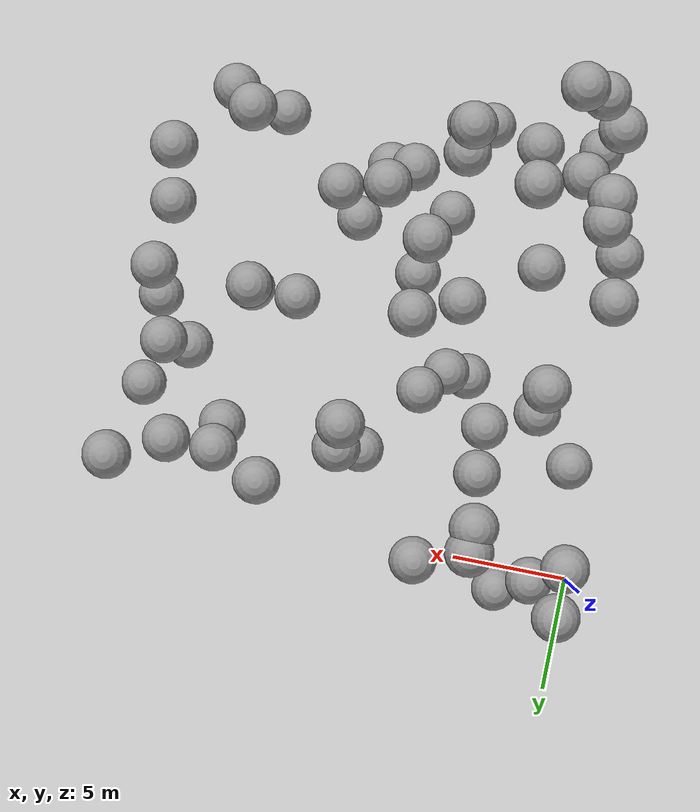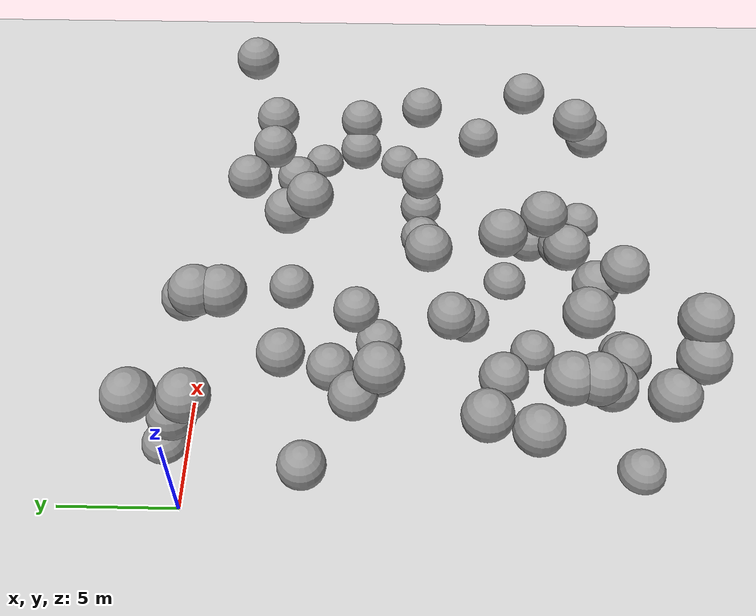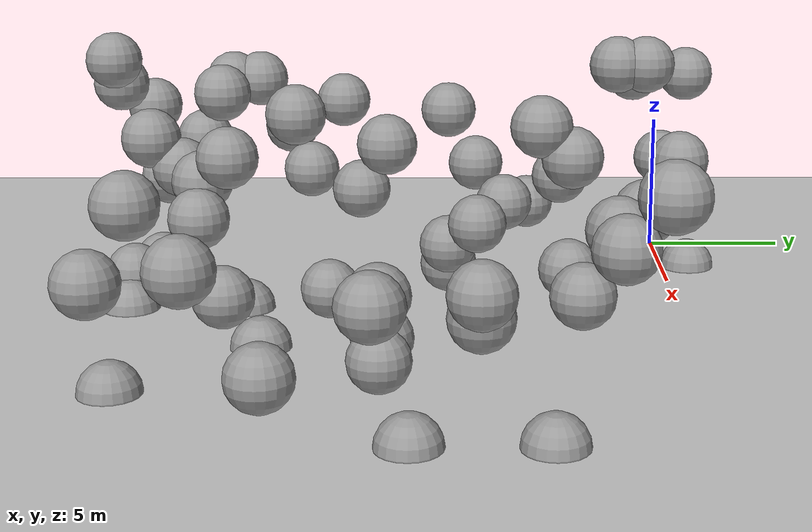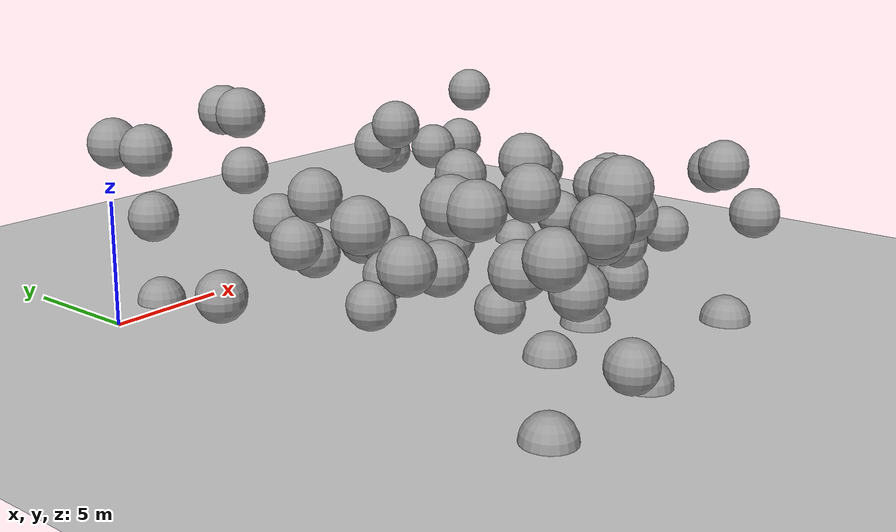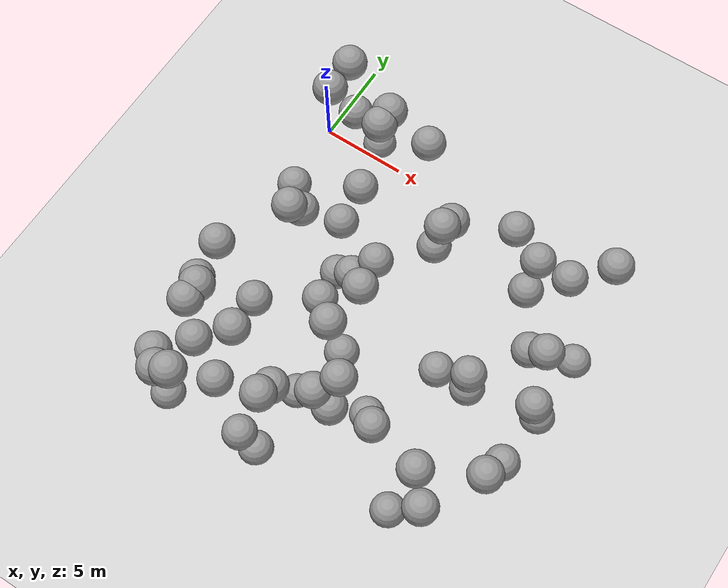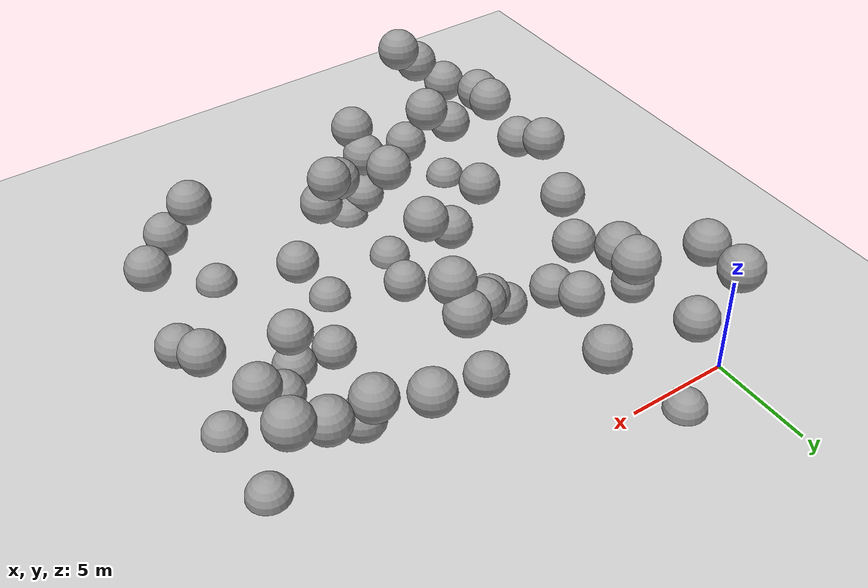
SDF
<sdf version="1.7">
 <world name="default">
  <model name="ground_plane">
   <static>1</static>
   <link name="link">
    <collision name="collision">
     <geometry><plane><normal>0 0 1</normal><size>100 100</size></plane></geometry>
     <surface>
      <contact><collide_bitmask>65535</collide_bitmask></contact>
      <friction><ode><mu>100</mu><mu2>50</mu2></ode></friction>
     </surface>
    </collision>
    <visual name="visual">
     <cast_shadows>0</cast_shadows>
     <geometry><plane><normal>0 0 1</normal><size>100 100</size></plane></geometry>
     <material>
      <script><uri>file://media/materials/scripts/gazebo.material</uri><name>Gazebo/Grey</name></script>
     </material>
    </visual>
   </link>
  </model>
  <model name="sphere_0">
   <static>1</static>
   <pose>7 -8 2 0 0 0</pose>
   <link name="link">
    <inertial>
     <mass>418.87902047863906</mass>
     <inertia>
      <ixx>167.55160819145564</ixx>
      <iyy>167.55160819145564</iyy>
      <izz>167.55160819145564</izz>
      <ixy>0</ixy>
      <ixz>0</ixz>
      <iyz>0</iyz>
     </inertia>
    </inertial>
    <collision name="collision"><geometry><sphere><radius>1.0</radius></sphere></geometry></collision>
    <visual name="visual">
     <geometry><sphere><radius>1.0</radius></sphere></geometry>
     <material>
      <script><uri>file://media/materials/scripts/gazebo.material</uri><name>Gazebo/Grey</name></script>
     </material>
    </visual>
   </link>
  </model>
  <model name="sphere_10">
   <static>1</static>
   <pose>2 0 4 0 0 0</pose>
   <link name="link">
    <inertial>
     <mass>418.87902047863906</mass>
     <inertia>
      <ixx>167.55160819145564</ixx>
      <iyy>167.55160819145564</iyy>
      <izz>167.55160819145564</izz>
      <ixy>0</ixy>
      <ixz>0</ixz>
      <iyz>0</iyz>
     </inertia>
    </inertial>
    <collision name="collision"><geometry><sphere><radius>1.0</radius></sphere></geometry></collision>
    <visual name="visual">
     <geometry><sphere><radius>1.0</radius></sphere></geometry>
     <material>
      <script><uri>file://media/materials/scripts/gazebo.material</uri><name>Gazebo/Grey</name></script>
     </material>
    </visual>
   </link>
  </model>
  <model name="sphere_15">
   <static>1</static>
   <pose>20 -15 5 0 0 0</pose>
   <link name="link">
    <inertial>
     <mass>418.87902047863906</mass>
     <inertia>
      <ixx>167.55160819145564</ixx>
      <iyy>167.55160819145564</iyy>
      <izz>167.55160819145564</izz>
      <ixy>0</ixy>
      <ixz>0</ixz>
      <iyz>0</iyz>
     </inertia>
    </inertial>
    <collision name="collision"><geometry><sphere><radius>1.0</radius></sphere></geometry></collision>
    <visual name="visual">
     <geometry><sphere><radius>1.0</radius></sphere></geometry>
     <material>
      <script><uri>file://media/materials/scripts/gazebo.material</uri><name>Gazebo/Grey</name></script>
     </material>
    </visual>
   </link>
  </model>
  <model name="sphere_21">
   <static>1</static>
   <pose>1 -5 2 0 0 0</pose>
   <link name="link">
    <inertial>
     <mass>418.87902047863906</mass>
     <inertia>
      <ixx>167.55160819145564</ixx>
      <iyy>167.55160819145564</iyy>
      <izz>167.55160819145564</izz>
      <ixy>0</ixy>
      <ixz>0</ixz>
      <iyz>0</iyz>
     </inertia>
    </inertial>
    <collision name="collision"><geometry><sphere><radius>1.0</radius></sphere></geometry></collision>
    <visual name="visual">
     <geometry><sphere><radius>1.0</radius></sphere></geometry>
     <material>
      <script><uri>file://media/materials/scripts/gazebo.material</uri><name>Gazebo/Grey</name></script>
     </material>
    </visual>
   </link>
  </model>
  <model name="sphere_22">
   <static>1</static>
   <pose>2 -16 7 0 0 0</pose>
   <link name="link">
    <inertial>
     <mass>418.87902047863906</mass>
     <inertia>
      <ixx>167.55160819145564</ixx>
      <iyy>167.55160819145564</iyy>
      <izz>167.55160819145564</izz>
      <ixy>0</ixy>
      <ixz>0</ixz>
      <iyz>0</iyz>
     </inertia>
    </inertial>
    <collision name="collision"><geometry><sphere><radius>1.0</radius></sphere></geometry></collision>
    <visual name="visual">
     <geometry><sphere><radius>1.0</radius></sphere></geometry>
     <material>
      <script><uri>file://media/materials/scripts/gazebo.material</uri><name>Gazebo/Grey</name></script>
     </material>
    </visual>
   </link>
  </model>
  <model name="sphere_23">
   <static>1</static>
   <pose>1 1 7 0 0 0</pose>
   <link name="link">
    <inertial>
     <mass>418.87902047863906</mass>
     <inertia>
      <ixx>167.55160819145564</ixx>
      <iyy>167.55160819145564</iyy>
      <izz>167.55160819145564</izz>
      <ixy>0</ixy>
      <ixz>0</ixz>
      <iyz>0</iyz>
     </inertia>
    </inertial>
    <collision name="collision"><geometry><sphere><radius>1.0</radius></sphere></geometry></collision>
    <visual name="visual">
     <geometry><sphere><radius>1.0</radius></sphere></geometry>
     <material>
      <script><uri>file://media/materials/scripts/gazebo.material</uri><name>Gazebo/Grey</name></script>
     </material>
    </visual>
   </link>
  </model>
  <model name="sphere_32">
   <static>1</static>
   <pose>3 -8 6 0 0 0</pose>
   <link name="link">
    <inertial>
     <mass>418.87902047863906</mass>
     <inertia>
      <ixx>167.55160819145564</ixx>
      <iyy>167.55160819145564</iyy>
      <izz>167.55160819145564</izz>
      <ixy>0</ixy>
      <ixz>0</ixz>
      <iyz>0</iyz>
     </inertia>
    </inertial>
    <collision name="collision"><geometry><sphere><radius>1.0</radius></sphere></geometry></collision>
    <visual name="visual">
     <geometry><sphere><radius>1.0</radius></sphere></geometry>
     <material>
      <script><uri>file://media/materials/scripts/gazebo.material</uri><name>Gazebo/Grey</name></script>
     </material>
    </visual>
   </link>
  </model>
  <model name="sphere_33">
   <static>1</static>
   <pose>11 -5 7 0 0 0</pose>
   <link name="link">
    <inertial>
     <mass>418.87902047863906</mass>
     <inertia>
      <ixx>167.55160819145564</ixx>
      <iyy>167.55160819145564</iyy>
      <izz>167.55160819145564</izz>
      <ixy>0</ixy>
      <ixz>0</ixz>
      <iyz>0</iyz>
     </inertia>
    </inertial>
    <collision name="collision"><geometry><sphere><radius>1.0</radius></sphere></geometry></collision>
    <visual name="visual">
     <geometry><sphere><radius>1.0</radius></sphere></geometry>
     <material>
      <script><uri>file://media/materials/scripts/gazebo.material</uri><name>Gazebo/Grey</name></script>
     </material>
    </visual>
   </link>
  </model>
  <model name="sphere_44">
   <static>1</static>
   <pose>10 -4 2 0 0 0</pose>
   <link name="link">
    <inertial>
     <mass>418.87902047863906</mass>
     <inertia>
      <ixx>167.55160819145564</ixx>
      <iyy>167.55160819145564</iyy>
      <izz>167.55160819145564</izz>
      <ixy>0</ixy>
      <ixz>0</ixz>
      <iyz>0</iyz>
     </inertia>
    </inertial>
    <collision name="collision"><geometry><sphere><radius>1.0</radius></sphere></geometry></collision>
    <visual name="visual">
     <geometry><sphere><radius>1.0</radius></sphere></geometry>
     <material>
      <script><uri>file://media/materials/scripts/gazebo.material</uri><name>Gazebo/Grey</name></script>
     </material>
    </visual>
   </link>
  </model>
  <model name="sphere_48">
   <static>1</static>
   <pose>3 1 0 0 0 0</pose>
   <link name="link">
    <inertial>
     <mass>418.87902047863906</mass>
     <inertia>
      <ixx>167.55160819145564</ixx>
      <iyy>167.55160819145564</iyy>
      <izz>167.55160819145564</izz>
      <ixy>0</ixy>
      <ixz>0</ixz>
      <iyz>0</iyz>
     </inertia>
    </inertial>
    <collision name="collision"><geometry><sphere><radius>1.0</radius></sphere></geometry></collision>
    <visual name="visual">
     <geometry><sphere><radius>1.0</radius></sphere></geometry>
     <material>
      <script><uri>file://media/materials/scripts/gazebo.material</uri><name>Gazebo/Grey</name></script>
     </material>
    </visual>
   </link>
  </model>
  <model name="sphere_51">
   <static>1</static>
   <pose>19 -7 4 0 0 0</pose>
   <link name="link">
    <inertial>
     <mass>418.87902047863906</mass>
     <inertia>
      <ixx>167.55160819145564</ixx>
      <iyy>167.55160819145564</iyy>
      <izz>167.55160819145564</izz>
      <ixy>0</ixy>
      <ixz>0</ixz>
      <iyz>0</iyz>
     </inertia>
    </inertial>
    <collision name="collision"><geometry><sphere><radius>1.0</radius></sphere></geometry></collision>
    <visual name="visual">
     <geometry><sphere><radius>1.0</radius></sphere></geometry>
     <material>
      <script><uri>file://media/materials/scripts/gazebo.material</uri><name>Gazebo/Grey</name></script>
     </material>
    </visual>
   </link>
  </model>
  <model name="sphere_53">
   <static>1</static>
   <pose>3 -20 7 0 0 0</pose>
   <link name="link">
    <inertial>
     <mass>418.87902047863906</mass>
     <inertia>
      <ixx>167.55160819145564</ixx>
      <iyy>167.55160819145564</iyy>
      <izz>167.55160819145564</izz>
      <ixy>0</ixy>
      <ixz>0</ixz>
      <iyz>0</iyz>
     </inertia>
    </inertial>
    <collision name="collision"><geometry><sphere><radius>1.0</radius></sphere></geometry></collision>
    <visual name="visual">
     <geometry><sphere><radius>1.0</radius></sphere></geometry>
     <material>
      <script><uri>file://media/materials/scripts/gazebo.material</uri><name>Gazebo/Grey</name></script>
     </material>
    </visual>
   </link>
  </model>
  <model name="sphere_54">
   <static>1</static>
   <pose>3 -17 5 0 0 0</pose>
   <link name="link">
    <inertial>
     <mass>418.87902047863906</mass>
     <inertia>
      <ixx>167.55160819145564</ixx>
      <iyy>167.55160819145564</iyy>
      <izz>167.55160819145564</izz>
      <ixy>0</ixy>
      <ixz>0</ixz>
      <iyz>0</iyz>
     </inertia>
    </inertial>
    <collision name="collision"><geometry><sphere><radius>1.0</radius></sphere></geometry></collision>
    <visual name="visual">
     <geometry><sphere><radius>1.0</radius></sphere></geometry>
     <material>
      <script><uri>file://media/materials/scripts/gazebo.material</uri><name>Gazebo/Grey</name></script>
     </material>
    </visual>
   </link>
  </model>
  <model name="sphere_55">
   <static>1</static>
   <pose>4 -13 4 0 0 0</pose>
   <link name="link">
    <inertial>
     <mass>418.87902047863906</mass>
     <inertia>
      <ixx>167.55160819145564</ixx>
      <iyy>167.55160819145564</iyy>
      <izz>167.55160819145564</izz>
      <ixy>0</ixy>
      <ixz>0</ixz>
      <iyz>0</iyz>
     </inertia>
    </inertial>
    <collision name="collision"><geometry><sphere><radius>1.0</radius></sphere></geometry></collision>
    <visual name="visual">
     <geometry><sphere><radius>1.0</radius></sphere></geometry>
     <material>
      <script><uri>file://media/materials/scripts/gazebo.material</uri><name>Gazebo/Grey</name></script>
     </material>
    </visual>
   </link>
  </model>
  <model name="sphere_62">
   <static>1</static>
   <pose>17 -17 6 0 0 0</pose>
   <link name="link">
    <inertial>
     <mass>418.87902047863906</mass>
     <inertia>
      <ixx>167.55160819145564</ixx>
      <iyy>167.55160819145564</iyy>
      <izz>167.55160819145564</izz>
      <ixy>0</ixy>
      <ixz>0</ixz>
      <iyz>0</iyz>
     </inertia>
    </inertial>
    <collision name="collision"><geometry><sphere><radius>1.0</radius></sphere></geometry></collision>
    <visual name="visual">
     <geometry><sphere><radius>1.0</radius></sphere></geometry>
     <material>
      <script><uri>file://media/materials/scripts/gazebo.material</uri><name>Gazebo/Grey</name></script>
     </material>
    </visual>
   </link>
  </model>
  <model name="sphere_63">
   <static>1</static>
   <pose>6 -8 1 0 0 0</pose>
   <link name="link">
    <inertial>
     <mass>418.87902047863906</mass>
     <inertia>
      <ixx>167.55160819145564</ixx>
      <iyy>167.55160819145564</iyy>
      <izz>167.55160819145564</izz>
      <ixy>0</ixy>
      <ixz>0</ixz>
      <iyz>0</iyz>
     </inertia>
    </inertial>
    <collision name="collision"><geometry><sphere><radius>1.0</radius></sphere></geometry></collision>
    <visual name="visual">
     <geometry><sphere><radius>1.0</radius></sphere></geometry>
     <material>
      <script><uri>file://media/materials/scripts/gazebo.material</uri><name>Gazebo/Grey</name></script>
     </material>
    </visual>
   </link>
  </model>
  <model name="sphere_66">
   <static>1</static>
   <pose>13 -15 2 0 0 0</pose>
   <link name="link">
    <inertial>
     <mass>418.87902047863906</mass>
     <inertia>
      <ixx>167.55160819145564</ixx>
      <iyy>167.55160819145564</iyy>
      <izz>167.55160819145564</izz>
      <ixy>0</ixy>
      <ixz>0</ixz>
      <iyz>0</iyz>
     </inertia>
    </inertial>
    <collision name="collision"><geometry><sphere><radius>1.0</radius></sphere></geometry></collision>
    <visual name="visual">
     <geometry><sphere><radius>1.0</radius></sphere></geometry>
     <material>
      <script><uri>file://media/materials/scripts/gazebo.material</uri><name>Gazebo/Grey</name></script>
     </material>
    </visual>
   </link>
  </model>
  <model name="sphere_67">
   <static>1</static>
   <pose>16 -3 5 0 0 0</pose>
   <link name="link">
    <inertial>
     <mass>418.87902047863906</mass>
     <inertia>
      <ixx>167.55160819145564</ixx>
      <iyy>167.55160819145564</iyy>
      <izz>167.55160819145564</izz>
      <ixy>0</ixy>
      <ixz>0</ixz>
      <iyz>0</iyz>
     </inertia>
    </inertial>
    <collision name="collision"><geometry><sphere><radius>1.0</radius></sphere></geometry></collision>
    <visual name="visual">
     <geometry><sphere><radius>1.0</radius></sphere></geometry>
     <material>
      <script><uri>file://media/materials/scripts/gazebo.material</uri><name>Gazebo/Grey</name></script>
     </material>
    </visual>
   </link>
  </model>
  <model name="sphere_72">
   <static>1</static>
   <pose>1 -14 5 0 0 0</pose>
   <link name="link">
    <inertial>
     <mass>418.87902047863906</mass>
     <inertia>
      <ixx>167.55160819145564</ixx>
      <iyy>167.55160819145564</iyy>
      <izz>167.55160819145564</izz>
      <ixy>0</ixy>
      <ixz>0</ixz>
      <iyz>0</iyz>
     </inertia>
    </inertial>
    <collision name="collision"><geometry><sphere><radius>1.0</radius></sphere></geometry></collision>
    <visual name="visual">
     <geometry><sphere><radius>1.0</radius></sphere></geometry>
     <material>
      <script><uri>file://media/materials/scripts/gazebo.material</uri><name>Gazebo/Grey</name></script>
     </material>
    </visual>
   </link>
  </model>
  <model name="sphere_81">
   <static>1</static>
   <pose>8 -18 6 0 0 0</pose>
   <link name="link">
    <inertial>
     <mass>418.87902047863906</mass>
     <inertia>
      <ixx>167.55160819145564</ixx>
      <iyy>167.55160819145564</iyy>
      <izz>167.55160819145564</izz>
      <ixy>0</ixy>
      <ixz>0</ixz>
      <iyz>0</iyz>
     </inertia>
    </inertial>
    <collision name="collision"><geometry><sphere><radius>1.0</radius></sphere></geometry></collision>
    <visual name="visual">
     <geometry><sphere><radius>1.0</radius></sphere></geometry>
     <material>
      <script><uri>file://media/materials/scripts/gazebo.material</uri><name>Gazebo/Grey</name></script>
     </material>
    </visual>
   </link>
  </model>
  <model name="sphere_83">
   <static>1</static>
   <pose>20 -2 7 0 0 0</pose>
   <link name="link">
    <inertial>
     <mass>418.87902047863906</mass>
     <inertia>
      <ixx>167.55160819145564</ixx>
      <iyy>167.55160819145564</iyy>
      <izz>167.55160819145564</izz>
      <ixy>0</ixy>
      <ixz>0</ixz>
      <iyz>0</iyz>
     </inertia>
    </inertial>
    <collision name="collision"><geometry><sphere><radius>1.0</radius></sphere></geometry></collision>
    <visual name="visual">
     <geometry><sphere><radius>1.0</radius></sphere></geometry>
     <material>
      <script><uri>file://media/materials/scripts/gazebo.material</uri><name>Gazebo/Grey</name></script>
     </material>
    </visual>
   </link>
  </model>
  <model name="sphere_96">
   <static>1</static>
   <pose>3 -7 4 0 0 0</pose>
   <link name="link">
    <inertial>
     <mass>418.87902047863906</mass>
     <inertia>
      <ixx>167.55160819145564</ixx>
      <iyy>167.55160819145564</iyy>
      <izz>167.55160819145564</izz>
      <ixy>0</ixy>
      <ixz>0</ixz>
      <iyz>0</iyz>
     </inertia>
    </inertial>
    <collision name="collision"><geometry><sphere><radius>1.0</radius></sphere></geometry></collision>
    <visual name="visual">
     <geometry><sphere><radius>1.0</radius></sphere></geometry>
     <material>
      <script><uri>file://media/materials/scripts/gazebo.material</uri><name>Gazebo/Grey</name></script>
     </material>
    </visual>
   </link>
  </model>
  <model name="sphere_97">
   <static>1</static>
   <pose>5 -1 8 0 0 0</pose>
   <link name="link">
    <inertial>
     <mass>418.87902047863906</mass>
     <inertia>
      <ixx>167.55160819145564</ixx>
      <iyy>167.55160819145564</iyy>
      <izz>167.55160819145564</izz>
      <ixy>0</ixy>
      <ixz>0</ixz>
      <iyz>0</iyz>
     </inertia>
    </inertial>
    <collision name="collision"><geometry><sphere><radius>1.0</radius></sphere></geometry></collision>
    <visual name="visual">
     <geometry><sphere><radius>1.0</radius></sphere></geometry>
     <material>
      <script><uri>file://media/materials/scripts/gazebo.material</uri><name>Gazebo/Grey</name></script>
     </material>
    </visual>
   </link>
  </model>
  <model name="sphere_98">
   <static>1</static>
   <pose>8 -7 3 0 0 0</pose>
   <link name="link">
    <inertial>
     <mass>418.87902047863906</mass>
     <inertia>
      <ixx>167.55160819145564</ixx>
      <iyy>167.55160819145564</iyy>
      <izz>167.55160819145564</izz>
      <ixy>0</ixy>
      <ixz>0</ixz>
      <iyz>0</iyz>
     </inertia>
    </inertial>
    <collision name="collision"><geometry><sphere><radius>1.0</radius></sphere></geometry></collision>
    <visual name="visual">
     <geometry><sphere><radius>1.0</radius></sphere></geometry>
     <material>
      <script><uri>file://media/materials/scripts/gazebo.material</uri><name>Gazebo/Grey</name></script>
     </material>
    </visual>
   </link>
  </model>
  <model name="sphere_99">
   <static>1</static>
   <pose>5 -2 8 0 0 0</pose>
   <link name="link">
    <inertial>
     <mass>418.87902047863906</mass>
     <inertia>
      <ixx>167.55160819145564</ixx>
      <iyy>167.55160819145564</iyy>
      <izz>167.55160819145564</izz>
      <ixy>0</ixy>
      <ixz>0</ixz>
      <iyz>0</iyz>
     </inertia>
    </inertial>
    <collision name="collision"><geometry><sphere><radius>1.0</radius></sphere></geometry></collision>
    <visual name="visual">
     <geometry><sphere><radius>1.0</radius></sphere></geometry>
     <material>
      <script><uri>file://media/materials/scripts/gazebo.material</uri><name>Gazebo/Grey</name></script>
     </material>
    </visual>
   </link>
  </model>
  <model name="sphere_103">
   <static>1</static>
   <pose>11 -15 6 0 0 0</pose>
   <link name="link">
    <inertial>
     <mass>418.87902047863906</mass>
     <inertia>
      <ixx>167.55160819145564</ixx>
      <iyy>167.55160819145564</iyy>
      <izz>167.55160819145564</izz>
      <ixy>0</ixy>
      <ixz>0</ixz>
      <iyz>0</iyz>
     </inertia>
    </inertial>
    <collision name="collision"><geometry><sphere><radius>1.0</radius></sphere></geometry></collision>
    <visual name="visual">
     <geometry><sphere><radius>1.0</radius></sphere></geometry>
     <material>
      <script><uri>file://media/materials/scripts/gazebo.material</uri><name>Gazebo/Grey</name></script>
     </material>
    </visual>
   </link>
  </model>
  <model name="sphere_113">
   <static>1</static>
   <pose>1 -14 5 0 0 0</pose>
   <link name="link">
    <inertial>
     <mass>418.87902047863906</mass>
     <inertia>
      <ixx>167.55160819145564</ixx>
      <iyy>167.55160819145564</iyy>
      <izz>167.55160819145564</izz>
      <ixy>0</ixy>
      <ixz>0</ixz>
      <iyz>0</iyz>
     </inertia>
    </inertial>
    <collision name="collision"><geometry><sphere><radius>1.0</radius></sphere></geometry></collision>
    <visual name="visual">
     <geometry><sphere><radius>1.0</radius></sphere></geometry>
     <material>
      <script><uri>file://media/materials/scripts/gazebo.material</uri><name>Gazebo/Grey</name></script>
     </material>
    </visual>
   </link>
  </model>
  <model name="sphere_121">
   <static>1</static>
   <pose>12 -14 0 0 0 0</pose>
   <link name="link">
    <inertial>
     <mass>418.87902047863906</mass>
     <inertia>
      <ixx>167.55160819145564</ixx>
      <iyy>167.55160819145564</iyy>
      <izz>167.55160819145564</izz>
      <ixy>0</ixy>
      <ixz>0</ixz>
      <iyz>0</iyz>
     </inertia>
    </inertial>
    <collision name="collision"><geometry><sphere><radius>1.0</radius></sphere></geometry></collision>
    <visual name="visual">
     <geometry><sphere><radius>1.0</radius></sphere></geometry>
     <material>
      <script><uri>file://media/materials/scripts/gazebo.material</uri><name>Gazebo/Grey</name></script>
     </material>
    </visual>
   </link>
  </model>
  <model name="sphere_125">
   <static>1</static>
   <pose>16 -10 3 0 0 0</pose>
   <link name="link">
    <inertial>
     <mass>418.87902047863906</mass>
     <inertia>
      <ixx>167.55160819145564</ixx>
      <iyy>167.55160819145564</iyy>
      <izz>167.55160819145564</izz>
      <ixy>0</ixy>
      <ixz>0</ixz>
      <iyz>0</iyz>
     </inertia>
    </inertial>
    <collision name="collision"><geometry><sphere><radius>1.0</radius></sphere></geometry></collision>
    <visual name="visual">
     <geometry><sphere><radius>1.0</radius></sphere></geometry>
     <material>
      <script><uri>file://media/materials/scripts/gazebo.material</uri><name>Gazebo/Grey</name></script>
     </material>
    </visual>
   </link>
  </model>
  <model name="sphere_127">
   <static>1</static>
   <pose>18 -7 3 0 0 0</pose>
   <link name="link">
    <inertial>
     <mass>418.87902047863906</mass>
     <inertia>
      <ixx>167.55160819145564</ixx>
      <iyy>167.55160819145564</iyy>
      <izz>167.55160819145564</izz>
      <ixy>0</ixy>
      <ixz>0</ixz>
      <iyz>0</iyz>
     </inertia>
    </inertial>
    <collision name="collision"><geometry><sphere><radius>1.0</radius></sphere></geometry></collision>
    <visual name="visual">
     <geometry><sphere><radius>1.0</radius></sphere></geometry>
     <material>
      <script><uri>file://media/materials/scripts/gazebo.material</uri><name>Gazebo/Grey</name></script>
     </material>
    </visual>
   </link>
  </model>
  <model name="sphere_129">
   <static>1</static>
   <pose>1 -12 6 0 0 0</pose>
   <link name="link">
    <inertial>
     <mass>418.87902047863906</mass>
     <inertia>
      <ixx>167.55160819145564</ixx>
      <iyy>167.55160819145564</iyy>
      <izz>167.55160819145564</izz>
      <ixy>0</ixy>
      <ixz>0</ixz>
      <iyz>0</iyz>
     </inertia>
    </inertial>
    <collision name="collision"><geometry><sphere><radius>1.0</radius></sphere></geometry></collision>
    <visual name="visual">
     <geometry><sphere><radius>1.0</radius></sphere></geometry>
     <material>
      <script><uri>file://media/materials/scripts/gazebo.material</uri><name>Gazebo/Grey</name></script>
     </material>
    </visual>
   </link>
  </model>
  <model name="sphere_131">
   <static>1</static>
   <pose>8 -17 5 0 0 0</pose>
   <link name="link">
    <inertial>
     <mass>418.87902047863906</mass>
     <inertia>
      <ixx>167.55160819145564</ixx>
      <iyy>167.55160819145564</iyy>
      <izz>167.55160819145564</izz>
      <ixy>0</ixy>
      <ixz>0</ixz>
      <iyz>0</iyz>
     </inertia>
    </inertial>
    <collision name="collision"><geometry><sphere><radius>1.0</radius></sphere></geometry></collision>
    <visual name="visual">
     <geometry><sphere><radius>1.0</radius></sphere></geometry>
     <material>
      <script><uri>file://media/materials/scripts/gazebo.material</uri><name>Gazebo/Grey</name></script>
     </material>
    </visual>
   </link>
  </model>
  <model name="sphere_140">
   <static>1</static>
   <pose>8 -19 0 0 0 0</pose>
   <link name="link">
    <inertial>
     <mass>418.87902047863906</mass>
     <inertia>
      <ixx>167.55160819145564</ixx>
      <iyy>167.55160819145564</iyy>
      <izz>167.55160819145564</izz>
      <ixy>0</ixy>
      <ixz>0</ixz>
      <iyz>0</iyz>
     </inertia>
    </inertial>
    <collision name="collision"><geometry><sphere><radius>1.0</radius></sphere></geometry></collision>
    <visual name="visual">
     <geometry><sphere><radius>1.0</radius></sphere></geometry>
     <material>
      <script><uri>file://media/materials/scripts/gazebo.material</uri><name>Gazebo/Grey</name></script>
     </material>
    </visual>
   </link>
  </model>
  <model name="sphere_144">
   <static>1</static>
   <pose>16 -4 3 0 0 0</pose>
   <link name="link">
    <inertial>
     <mass>418.87902047863906</mass>
     <inertia>
      <ixx>167.55160819145564</ixx>
      <iyy>167.55160819145564</iyy>
      <izz>167.55160819145564</izz>
      <ixy>0</ixy>
      <ixz>0</ixz>
      <iyz>0</iyz>
     </inertia>
    </inertial>
    <collision name="collision"><geometry><sphere><radius>1.0</radius></sphere></geometry></collision>
    <visual name="visual">
     <geometry><sphere><radius>1.0</radius></sphere></geometry>
     <material>
      <script><uri>file://media/materials/scripts/gazebo.material</uri><name>Gazebo/Grey</name></script>
     </material>
    </visual>
   </link>
  </model>
  <model name="sphere_146">
   <static>1</static>
   <pose>20 -9 0 0 0 0</pose>
   <link name="link">
    <inertial>
     <mass>418.87902047863906</mass>
     <inertia>
      <ixx>167.55160819145564</ixx>
      <iyy>167.55160819145564</iyy>
      <izz>167.55160819145564</izz>
      <ixy>0</ixy>
      <ixz>0</ixz>
      <iyz>0</iyz>
     </inertia>
    </inertial>
    <collision name="collision"><geometry><sphere><radius>1.0</radius></sphere></geometry></collision>
    <visual name="visual">
     <geometry><sphere><radius>1.0</radius></sphere></geometry>
     <material>
      <script><uri>file://media/materials/scripts/gazebo.material</uri><name>Gazebo/Grey</name></script>
     </material>
    </visual>
   </link>
  </model>
  <model name="sphere_152">
   <static>1</static>
   <pose>20 -5 0 0 0 0</pose>
   <link name="link">
    <inertial>
     <mass>418.87902047863906</mass>
     <inertia>
      <ixx>167.55160819145564</ixx>
      <iyy>167.55160819145564</iyy>
      <izz>167.55160819145564</izz>
      <ixy>0</ixy>
      <ixz>0</ixz>
      <iyz>0</iyz>
     </inertia>
    </inertial>
    <collision name="collision"><geometry><sphere><radius>1.0</radius></sphere></geometry></collision>
    <visual name="visual">
     <geometry><sphere><radius>1.0</radius></sphere></geometry>
     <material>
      <script><uri>file://media/materials/scripts/gazebo.material</uri><name>Gazebo/Grey</name></script>
     </material>
    </visual>
   </link>
  </model>
  <model name="sphere_158">
   <static>1</static>
   <pose>4 -20 8 0 0 0</pose>
   <link name="link">
    <inertial>
     <mass>418.87902047863906</mass>
     <inertia>
      <ixx>167.55160819145564</ixx>
      <iyy>167.55160819145564</iyy>
      <izz>167.55160819145564</izz>
      <ixy>0</ixy>
      <ixz>0</ixz>
      <iyz>0</iyz>
     </inertia>
    </inertial>
    <collision name="collision"><geometry><sphere><radius>1.0</radius></sphere></geometry></collision>
    <visual name="visual">
     <geometry><sphere><radius>1.0</radius></sphere></geometry>
     <material>
      <script><uri>file://media/materials/scripts/gazebo.material</uri><name>Gazebo/Grey</name></script>
     </material>
    </visual>
   </link>
  </model>
  <model name="sphere_159">
   <static>1</static>
   <pose>9 -10 6 0 0 0</pose>
   <link name="link">
    <inertial>
     <mass>418.87902047863906</mass>
     <inertia>
      <ixx>167.55160819145564</ixx>
      <iyy>167.55160819145564</iyy>
      <izz>167.55160819145564</izz>
      <ixy>0</ixy>
      <ixz>0</ixz>
      <iyz>0</iyz>
     </inertia>
    </inertial>
    <collision name="collision"><geometry><sphere><radius>1.0</radius></sphere></geometry></collision>
    <visual name="visual">
     <geometry><sphere><radius>1.0</radius></sphere></geometry>
     <material>
      <script><uri>file://media/materials/scripts/gazebo.material</uri><name>Gazebo/Grey</name></script>
     </material>
    </visual>
   </link>
  </model>
  <model name="sphere_160">
   <static>1</static>
   <pose>20 -10 4 0 0 0</pose>
   <link name="link">
    <inertial>
     <mass>418.87902047863906</mass>
     <inertia>
      <ixx>167.55160819145564</ixx>
      <iyy>167.55160819145564</iyy>
      <izz>167.55160819145564</izz>
      <ixy>0</ixy>
      <ixz>0</ixz>
      <iyz>0</iyz>
     </inertia>
    </inertial>
    <collision name="collision"><geometry><sphere><radius>1.0</radius></sphere></geometry></collision>
    <visual name="visual">
     <geometry><sphere><radius>1.0</radius></sphere></geometry>
     <material>
      <script><uri>file://media/materials/scripts/gazebo.material</uri><name>Gazebo/Grey</name></script>
     </material>
    </visual>
   </link>
  </model>
  <model name="sphere_168">
   <static>1</static>
   <pose>16 -18 0 0 0 0</pose>
   <link name="link">
    <inertial>
     <mass>418.87902047863906</mass>
     <inertia>
      <ixx>167.55160819145564</ixx>
      <iyy>167.55160819145564</iyy>
      <izz>167.55160819145564</izz>
      <ixy>0</ixy>
      <ixz>0</ixz>
      <iyz>0</iyz>
     </inertia>
    </inertial>
    <collision name="collision"><geometry><sphere><radius>1.0</radius></sphere></geometry></collision>
    <visual name="visual">
     <geometry><sphere><radius>1.0</radius></sphere></geometry>
     <material>
      <script><uri>file://media/materials/scripts/gazebo.material</uri><name>Gazebo/Grey</name></script>
     </material>
    </visual>
   </link>
  </model>
  <model name="sphere_175">
   <static>1</static>
   <pose>5 -6 3 0 0 0</pose>
   <link name="link">
    <inertial>
     <mass>418.87902047863906</mass>
     <inertia>
      <ixx>167.55160819145564</ixx>
      <iyy>167.55160819145564</iyy>
      <izz>167.55160819145564</izz>
      <ixy>0</ixy>
      <ixz>0</ixz>
      <iyz>0</iyz>
     </inertia>
    </inertial>
    <collision name="collision"><geometry><sphere><radius>1.0</radius></sphere></geometry></collision>
    <visual name="visual">
     <geometry><sphere><radius>1.0</radius></sphere></geometry>
     <material>
      <script><uri>file://media/materials/scripts/gazebo.material</uri><name>Gazebo/Grey</name></script>
     </material>
    </visual>
   </link>
  </model>
  <model name="sphere_176">
   <static>1</static>
   <pose>1 -1 7 0 0 0</pose>
   <link name="link">
    <inertial>
     <mass>418.87902047863906</mass>
     <inertia>
      <ixx>167.55160819145564</ixx>
      <iyy>167.55160819145564</iyy>
      <izz>167.55160819145564</izz>
      <ixy>0</ixy>
      <ixz>0</ixz>
      <iyz>0</iyz>
     </inertia>
    </inertial>
    <collision name="collision"><geometry><sphere><radius>1.0</radius></sphere></geometry></collision>
    <visual name="visual">
     <geometry><sphere><radius>1.0</radius></sphere></geometry>
     <material>
      <script><uri>file://media/materials/scripts/gazebo.material</uri><name>Gazebo/Grey</name></script>
     </material>
    </visual>
   </link>
  </model>
  <model name="sphere_177">
   <static>1</static>
   <pose>20 -13 2 0 0 0</pose>
   <link name="link">
    <inertial>
     <mass>418.87902047863906</mass>
     <inertia>
      <ixx>167.55160819145564</ixx>
      <iyy>167.55160819145564</iyy>
      <izz>167.55160819145564</izz>
      <ixy>0</ixy>
      <ixz>0</ixz>
      <iyz>0</iyz>
     </inertia>
    </inertial>
    <collision name="collision"><geometry><sphere><radius>1.0</radius></sphere></geometry></collision>
    <visual name="visual">
     <geometry><sphere><radius>1.0</radius></sphere></geometry>
     <material>
      <script><uri>file://media/materials/scripts/gazebo.material</uri><name>Gazebo/Grey</name></script>
     </material>
    </visual>
   </link>
  </model>
  <model name="sphere_178">
   <static>1</static>
   <pose>7 -11 4 0 0 0</pose>
   <link name="link">
    <inertial>
     <mass>418.87902047863906</mass>
     <inertia>
      <ixx>167.55160819145564</ixx>
      <iyy>167.55160819145564</iyy>
      <izz>167.55160819145564</izz>
      <ixy>0</ixy>
      <ixz>0</ixz>
      <iyz>0</iyz>
     </inertia>
    </inertial>
    <collision name="collision"><geometry><sphere><radius>1.0</radius></sphere></geometry></collision>
    <visual name="visual">
     <geometry><sphere><radius>1.0</radius></sphere></geometry>
     <material>
      <script><uri>file://media/materials/scripts/gazebo.material</uri><name>Gazebo/Grey</name></script>
     </material>
    </visual>
   </link>
  </model>
  <model name="sphere_180">
   <static>1</static>
   <pose>18 -18 4 0 0 0</pose>
   <link name="link">
    <inertial>
     <mass>418.87902047863906</mass>
     <inertia>
      <ixx>167.55160819145564</ixx>
      <iyy>167.55160819145564</iyy>
      <izz>167.55160819145564</izz>
      <ixy>0</ixy>
      <ixz>0</ixz>
      <iyz>0</iyz>
     </inertia>
    </inertial>
    <collision name="collision"><geometry><sphere><radius>1.0</radius></sphere></geometry></collision>
    <visual name="visual">
     <geometry><sphere><radius>1.0</radius></sphere></geometry>
     <material>
      <script><uri>file://media/materials/scripts/gazebo.material</uri><name>Gazebo/Grey</name></script>
     </material>
    </visual>
   </link>
  </model>
  <model name="sphere_185">
   <static>1</static>
   <pose>2 -19 0 0 0 0</pose>
   <link name="link">
    <inertial>
     <mass>418.87902047863906</mass>
     <inertia>
      <ixx>167.55160819145564</ixx>
      <iyy>167.55160819145564</iyy>
      <izz>167.55160819145564</izz>
      <ixy>0</ixy>
      <ixz>0</ixz>
      <iyz>0</iyz>
     </inertia>
    </inertial>
    <collision name="collision"><geometry><sphere><radius>1.0</radius></sphere></geometry></collision>
    <visual name="visual">
     <geometry><sphere><radius>1.0</radius></sphere></geometry>
     <material>
      <script><uri>file://media/materials/scripts/gazebo.material</uri><name>Gazebo/Grey</name></script>
     </material>
    </visual>
   </link>
  </model>
  <model name="sphere_187">
   <static>1</static>
   <pose>5 -18 4 0 0 0</pose>
   <link name="link">
    <inertial>
     <mass>418.87902047863906</mass>
     <inertia>
      <ixx>167.55160819145564</ixx>
      <iyy>167.55160819145564</iyy>
      <izz>167.55160819145564</izz>
      <ixy>0</ixy>
      <ixz>0</ixz>
      <iyz>0</iyz>
     </inertia>
    </inertial>
    <collision name="collision"><geometry><sphere><radius>1.0</radius></sphere></geometry></collision>
    <visual name="visual">
     <geometry><sphere><radius>1.0</radius></sphere></geometry>
     <material>
      <script><uri>file://media/materials/scripts/gazebo.material</uri><name>Gazebo/Grey</name></script>
     </material>
    </visual>
   </link>
  </model>
  <model name="sphere_194">
   <static>1</static>
   <pose>11 -16 4 0 0 0</pose>
   <link name="link">
    <inertial>
     <mass>418.87902047863906</mass>
     <inertia>
      <ixx>167.55160819145564</ixx>
      <iyy>167.55160819145564</iyy>
      <izz>167.55160819145564</izz>
      <ixy>0</ixy>
      <ixz>0</ixz>
      <iyz>0</iyz>
     </inertia>
    </inertial>
    <collision name="collision"><geometry><sphere><radius>1.0</radius></sphere></geometry></collision>
    <visual name="visual">
     <geometry><sphere><radius>1.0</radius></sphere></geometry>
     <material>
      <script><uri>file://media/materials/scripts/gazebo.material</uri><name>Gazebo/Grey</name></script>
     </material>
    </visual>
   </link>
  </model>
  <model name="sphere_198">
   <static>1</static>
   <pose>5 -4 4 0 0 0</pose>
   <link name="link">
    <inertial>
     <mass>418.87902047863906</mass>
     <inertia>
      <ixx>167.55160819145564</ixx>
      <iyy>167.55160819145564</iyy>
      <izz>167.55160819145564</izz>
      <ixy>0</ixy>
      <ixz>0</ixz>
      <iyz>0</iyz>
     </inertia>
    </inertial>
    <collision name="collision"><geometry><sphere><radius>1.0</radius></sphere></geometry></collision>
    <visual name="visual">
     <geometry><sphere><radius>1.0</radius></sphere></geometry>
     <material>
      <script><uri>file://media/materials/scripts/gazebo.material</uri><name>Gazebo/Grey</name></script>
     </material>
    </visual>
   </link>
  </model>
  <model name="sphere_202">
   <static>1</static>
   <pose>11 -4 6 0 0 0</pose>
   <link name="link">
    <inertial>
     <mass>418.87902047863906</mass>
     <inertia>
      <ixx>167.55160819145564</ixx>
      <iyy>167.55160819145564</iyy>
      <izz>167.55160819145564</izz>
      <ixy>0</ixy>
      <ixz>0</ixz>
      <iyz>0</iyz>
     </inertia>
    </inertial>
    <collision name="collision"><geometry><sphere><radius>1.0</radius></sphere></geometry></collision>
    <visual name="visual">
     <geometry><sphere><radius>1.0</radius></sphere></geometry>
     <material>
      <script><uri>file://media/materials/scripts/gazebo.material</uri><name>Gazebo/Grey</name></script>
     </material>
    </visual>
   </link>
  </model>
  <model name="sphere_203">
   <static>1</static>
   <pose>9 -12 1 0 0 0</pose>
   <link name="link">
    <inertial>
     <mass>418.87902047863906</mass>
     <inertia>
      <ixx>167.55160819145564</ixx>
      <iyy>167.55160819145564</iyy>
      <izz>167.55160819145564</izz>
      <ixy>0</ixy>
      <ixz>0</ixz>
      <iyz>0</iyz>
     </inertia>
    </inertial>
    <collision name="collision"><geometry><sphere><radius>1.0</radius></sphere></geometry></collision>
    <visual name="visual">
     <geometry><sphere><radius>1.0</radius></sphere></geometry>
     <material>
      <script><uri>file://media/materials/scripts/gazebo.material</uri><name>Gazebo/Grey</name></script>
     </material>
    </visual>
   </link>
  </model>
  <model name="sphere_205">
   <static>1</static>
   <pose>9 -13 7 0 0 0</pose>
   <link name="link">
    <inertial>
     <mass>418.87902047863906</mass>
     <inertia>
      <ixx>167.55160819145564</ixx>
      <iyy>167.55160819145564</iyy>
      <izz>167.55160819145564</izz>
      <ixy>0</ixy>
      <ixz>0</ixz>
      <iyz>0</iyz>
     </inertia>
    </inertial>
    <collision name="collision"><geometry><sphere><radius>1.0</radius></sphere></geometry></collision>
    <visual name="visual">
     <geometry><sphere><radius>1.0</radius></sphere></geometry>
     <material>
      <script><uri>file://media/materials/scripts/gazebo.material</uri><name>Gazebo/Grey</name></script>
     </material>
    </visual>
   </link>
  </model>
  <model name="sphere_209">
   <static>1</static>
   <pose>14 -10 1 0 0 0</pose>
   <link name="link">
    <inertial>
     <mass>418.87902047863906</mass>
     <inertia>
      <ixx>167.55160819145564</ixx>
      <iyy>167.55160819145564</iyy>
      <izz>167.55160819145564</izz>
      <ixy>0</ixy>
      <ixz>0</ixz>
      <iyz>0</iyz>
     </inertia>
    </inertial>
    <collision name="collision"><geometry><sphere><radius>1.0</radius></sphere></geometry></collision>
    <visual name="visual">
     <geometry><sphere><radius>1.0</radius></sphere></geometry>
     <material>
      <script><uri>file://media/materials/scripts/gazebo.material</uri><name>Gazebo/Grey</name></script>
     </material>
    </visual>
   </link>
  </model>
  <model name="sphere_220">
   <static>1</static>
   <pose>5 -16 7 0 0 0</pose>
   <link name="link">
    <inertial>
     <mass>418.87902047863906</mass>
     <inertia>
      <ixx>167.55160819145564</ixx>
      <iyy>167.55160819145564</iyy>
      <izz>167.55160819145564</izz>
      <ixy>0</ixy>
      <ixz>0</ixz>
      <iyz>0</iyz>
     </inertia>
    </inertial>
    <collision name="collision"><geometry><sphere><radius>1.0</radius></sphere></geometry></collision>
    <visual name="visual">
     <geometry><sphere><radius>1.0</radius></sphere></geometry>
     <material>
      <script><uri>file://media/materials/scripts/gazebo.material</uri><name>Gazebo/Grey</name></script>
     </material>
    </visual>
   </link>
  </model>
  <model name="sphere_222">
   <static>1</static>
   <pose>10 -16 5 0 0 0</pose>
   <link name="link">
    <inertial>
     <mass>418.87902047863906</mass>
     <inertia>
      <ixx>167.55160819145564</ixx>
      <iyy>167.55160819145564</iyy>
      <izz>167.55160819145564</izz>
      <ixy>0</ixy>
      <ixz>0</ixz>
      <iyz>0</iyz>
     </inertia>
    </inertial>
    <collision name="collision"><geometry><sphere><radius>1.0</radius></sphere></geometry></collision>
    <visual name="visual">
     <geometry><sphere><radius>1.0</radius></sphere></geometry>
     <material>
      <script><uri>file://media/materials/scripts/gazebo.material</uri><name>Gazebo/Grey</name></script>
     </material>
    </visual>
   </link>
  </model>
  <model name="sphere_225">
   <static>1</static>
   <pose>7 0 5 0 0 0</pose>
   <link name="link">
    <inertial>
     <mass>418.87902047863906</mass>
     <inertia>
      <ixx>167.55160819145564</ixx>
      <iyy>167.55160819145564</iyy>
      <izz>167.55160819145564</izz>
      <ixy>0</ixy>
      <ixz>0</ixz>
      <iyz>0</iyz>
     </inertia>
    </inertial>
    <collision name="collision"><geometry><sphere><radius>1.0</radius></sphere></geometry></collision>
    <visual name="visual">
     <geometry><sphere><radius>1.0</radius></sphere></geometry>
     <material>
      <script><uri>file://media/materials/scripts/gazebo.material</uri><name>Gazebo/Grey</name></script>
     </material>
    </visual>
   </link>
  </model>
  <model name="sphere_227">
   <static>1</static>
   <pose>8 -15 0 0 0 0</pose>
   <link name="link">
    <inertial>
     <mass>418.87902047863906</mass>
     <inertia>
      <ixx>167.55160819145564</ixx>
      <iyy>167.55160819145564</iyy>
      <izz>167.55160819145564</izz>
      <ixy>0</ixy>
      <ixz>0</ixz>
      <iyz>0</iyz>
     </inertia>
    </inertial>
    <collision name="collision"><geometry><sphere><radius>1.0</radius></sphere></geometry></collision>
    <visual name="visual">
     <geometry><sphere><radius>1.0</radius></sphere></geometry>
     <material>
      <script><uri>file://media/materials/scripts/gazebo.material</uri><name>Gazebo/Grey</name></script>
     </material>
    </visual>
   </link>
  </model>
  <model name="sphere_234">
   <static>1</static>
   <pose>7 -19 1 0 0 0</pose>
   <link name="link">
    <inertial>
     <mass>418.87902047863906</mass>
     <inertia>
      <ixx>167.55160819145564</ixx>
      <iyy>167.55160819145564</iyy>
      <izz>167.55160819145564</izz>
      <ixy>0</ixy>
      <ixz>0</ixz>
      <iyz>0</iyz>
     </inertia>
    </inertial>
    <collision name="collision"><geometry><sphere><radius>1.0</radius></sphere></geometry></collision>
    <visual name="visual">
     <geometry><sphere><radius>1.0</radius></sphere></geometry>
     <material>
      <script><uri>file://media/materials/scripts/gazebo.material</uri><name>Gazebo/Grey</name></script>
     </material>
    </visual>
   </link>
  </model>
  <model name="sphere_241">
   <static>1</static>
   <pose>2 -15 7 0 0 0</pose>
   <link name="link">
    <inertial>
     <mass>418.87902047863906</mass>
     <inertia>
      <ixx>167.55160819145564</ixx>
      <iyy>167.55160819145564</iyy>
      <izz>167.55160819145564</izz>
      <ixy>0</ixy>
      <ixz>0</ixz>
      <iyz>0</iyz>
     </inertia>
    </inertial>
    <collision name="collision"><geometry><sphere><radius>1.0</radius></sphere></geometry></collision>
    <visual name="visual">
     <geometry><sphere><radius>1.0</radius></sphere></geometry>
     <material>
      <script><uri>file://media/materials/scripts/gazebo.material</uri><name>Gazebo/Grey</name></script>
     </material>
    </visual>
   </link>
  </model>
  <model name="sphere_242">
   <static>1</static>
   <pose>14 -2 5 0 0 0</pose>
   <link name="link">
    <inertial>
     <mass>418.87902047863906</mass>
     <inertia>
      <ixx>167.55160819145564</ixx>
      <iyy>167.55160819145564</iyy>
      <izz>167.55160819145564</izz>
      <ixy>0</ixy>
      <ixz>0</ixz>
      <iyz>0</iyz>
     </inertia>
    </inertial>
    <collision name="collision"><geometry><sphere><radius>1.0</radius></sphere></geometry></collision>
    <visual name="visual">
     <geometry><sphere><radius>1.0</radius></sphere></geometry>
     <material>
      <script><uri>file://media/materials/scripts/gazebo.material</uri><name>Gazebo/Grey</name></script>
     </material>
    </visual>
   </link>
  </model>
  <model name="sphere_246">
   <static>1</static>
   <pose>16 -10 1 0 0 0</pose>
   <link name="link">
    <inertial>
     <mass>418.87902047863906</mass>
     <inertia>
      <ixx>167.55160819145564</ixx>
      <iyy>167.55160819145564</iyy>
      <izz>167.55160819145564</izz>
      <ixy>0</ixy>
      <ixz>0</ixz>
      <iyz>0</iyz>
     </inertia>
    </inertial>
    <collision name="collision"><geometry><sphere><radius>1.0</radius></sphere></geometry></collision>
    <visual name="visual">
     <geometry><sphere><radius>1.0</radius></sphere></geometry>
     <material>
      <script><uri>file://media/materials/scripts/gazebo.material</uri><name>Gazebo/Grey</name></script>
     </material>
    </visual>
   </link>
  </model>
  <model name="sphere_248">
   <static>1</static>
   <pose>18 -3 5 0 0 0</pose>
   <link name="link">
    <inertial>
     <mass>418.87902047863906</mass>
     <inertia>
      <ixx>167.55160819145564</ixx>
      <iyy>167.55160819145564</iyy>
      <izz>167.55160819145564</izz>
      <ixy>0</ixy>
      <ixz>0</ixz>
      <iyz>0</iyz>
     </inertia>
    </inertial>
    <collision name="collision"><geometry><sphere><radius>1.0</radius></sphere></geometry></collision>
    <visual name="visual">
     <geometry><sphere><radius>1.0</radius></sphere></geometry>
     <material>
      <script><uri>file://media/materials/scripts/gazebo.material</uri><name>Gazebo/Grey</name></script>
     </material>
    </visual>
   </link>
  </model>
  <model name="sphere_249">
   <static>1</static>
   <pose>2 -19 6 0 0 0</pose>
   <link name="link">
    <inertial>
     <mass>418.87902047863906</mass>
     <inertia>
      <ixx>167.55160819145564</ixx>
      <iyy>167.55160819145564</iyy>
      <izz>167.55160819145564</izz>
      <ixy>0</ixy>
      <ixz>0</ixz>
      <iyz>0</iyz>
     </inertia>
    </inertial>
    <collision name="collision"><geometry><sphere><radius>1.0</radius></sphere></geometry></collision>
    <visual name="visual">
     <geometry><sphere><radius>1.0</radius></sphere></geometry>
     <material>
      <script><uri>file://media/materials/scripts/gazebo.material</uri><name>Gazebo/Grey</name></script>
     </material>
    </visual>
   </link>
  </model>
 </world>
</sdf>
